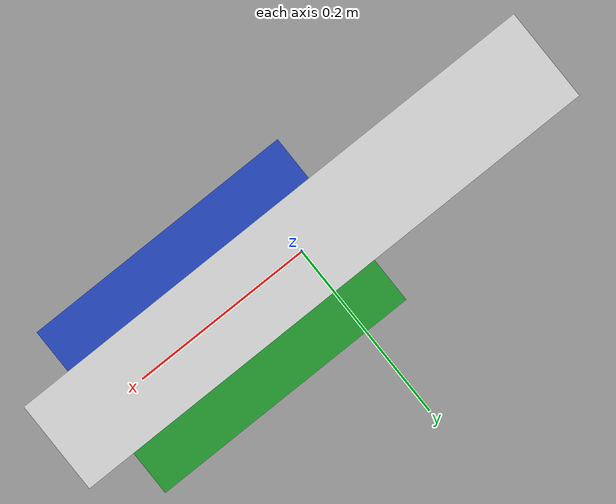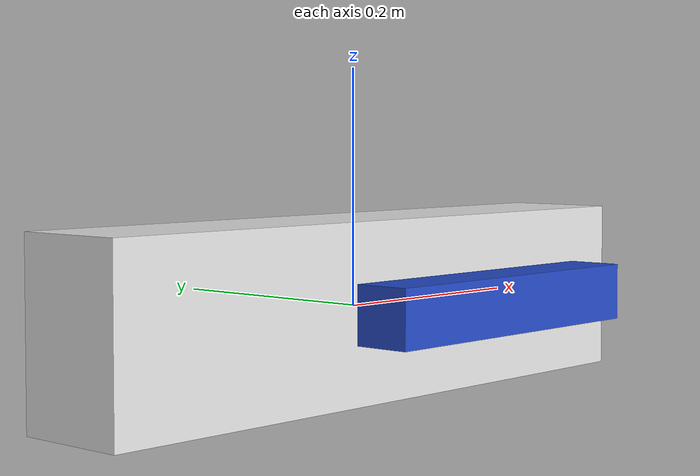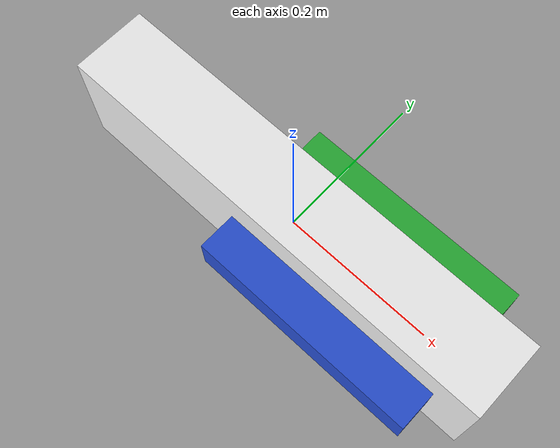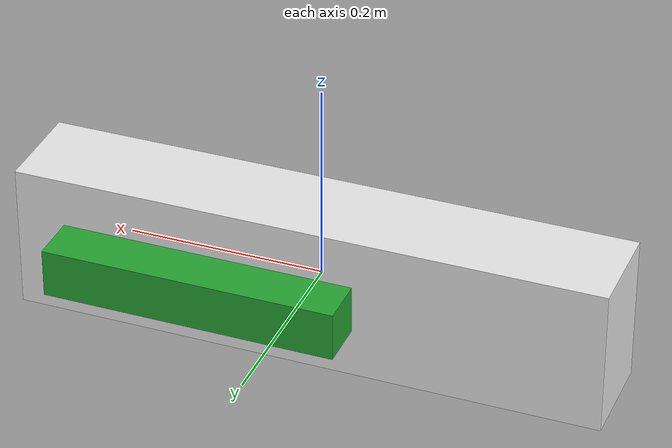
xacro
<?xml version="1.0"?>

<robot name="two_link" xmlns:xacro="http://ros.org/wiki/xacro">

  <!-- Property Definition: Referred to using ${property_name} -->
  <xacro:property name="box_name" value="robot" />
  <xacro:property name="mass" value="0.5" />

  <!-- Macro for the inertia of a box -->
  <xacro:macro name="box_inertia" params="x y z mass">
    <inertia ixx="${0.0833333 * mass * (y*y + z*z)}" ixy="0.0" ixz="0.0"
      iyy="${0.0833333 * mass * (x*x + z*z)}" iyz="0.0"
      izz="${0.0833333 * mass * (x*x + y*y)}" />
  </xacro:macro>

    <!-- Macro for the inertial properties of a box -->
  <xacro:macro name="box_inertial" params="x y z mass *origin">
    <inertial>
      <mass value="${mass}" />
      <xacro:insert_block name="origin" />
      <xacro:box_inertia x="${x}" y="${y}" z="${z}" mass="${mass}" />
    </inertial>
  </xacro:macro>

<!-- Link Definitions (Virtual Link) -->
<link name="${box_name}/base_link" />

<!-- Link Definitions (Actual Link) -->
<link name="${box_name}/box">
  <!-- Inertial block (uses box_inertial macro) -->
  <xacro:box_inertial x="0.6" y="0.1" z="0.15" mass="${mass}">
    <origin xyz="0 0 0" />
  </xacro:box_inertial>

  <!-- Visual block -->
  <visual>
    <origin xyz="0 0 0" rpy="0 0 0" />
    <geometry>
      <box size="0.6 0.1 0.15"/>
    </geometry>
  </visual>

  <!-- Collision block -->
  <collision>
    <origin xyz="0 0 0" rpy="0 0 0" />
    <geometry>
      <box size="0.6 0.1 0.15"/>
     </geometry>
  </collision>
</link>

  <!-- Gazebo specific properties for the box link -->
  <gazebo reference="${box_name}/box">
    <material>Gazebo/White</material>
      <mu1>5.01</mu1>
      <mu2>5.01</mu2>
  </gazebo>

  <!-- Joint between the virtual link and the actual link -->
  <joint name="${box_name}/base_joint" type="fixed">
    <origin xyz="0.0 0 0.0" rpy="0 0 0" />
    <parent link="${box_name}/base_link" />
    <child link="${box_name}/box" />
  </joint>

  <link name="${box_name}/arm1">
    <!-- Visual block -->
    <visual>
      <origin xyz="0.1 0 0" rpy="0 0 0" />
      <geometry>
        <box size="0.3 0.05 0.05"/>
      </geometry>
    </visual>
    <!-- Collision block -->
    <collision>
      <origin xyz="0.1 0 0" rpy="0 0 0" />
      <geometry>
        <box size="0.3 0.05 0.05"/>
      </geometry>
    </collision>
    <!-- Inertial block (uses box_inertial macro) -->
    <xacro:box_inertial x="0.3" y="0.05" z="0.05" mass="${mass}">
      <origin xyz="0.1 0 0" />
    </xacro:box_inertial>
  </link>
  <link name="${box_name}/arm2">
    <!-- Visual block -->
    <visual>
      <origin xyz="0.1 0 0" rpy="0 0 0" />
      <geometry>
        <box size="0.3 0.05 0.05"/>
      </geometry>
    </visual>
    <!-- Collision block -->
    <collision>
      <origin xyz="0.1 0 0" rpy="0 0 0" />
      <geometry>
        <box size="0.3 0.05 0.05"/>
      </geometry>
    </collision>
    <!-- Inertial block (uses box_inertial macro) -->
    <xacro:box_inertial x="0.3" y="0.05" z="0.05" mass="${mass}">
      <origin xyz="0.1 0 0" />
    </xacro:box_inertial>
  </link>
  <!-- Joint between the first link and the new link -->
  <joint name="${box_name}/link_joint1" type="revolute">
    <origin xyz="0.0 -0.075 -0.00" rpy="0 0 0" />
    <parent link="${box_name}/box" />
    <child link="${box_name}/arm1" />
    <axis xyz="0 1 0" />
    <limit lower="${-pi}" upper="${pi}" effort="50.01" velocity="1.01" />
    <dynamics damping="0.0" friction="0.1"/>
  </joint>
  <!-- Gazebo specific properties for the arm link -->
  <gazebo reference="${box_name}/arm1">
    <material>Gazebo/Blue</material>
  </gazebo>

    <!-- Joint between the first link and the new link -->
  <joint name="${box_name}/link_joint2" type="revolute">
    <origin xyz="0.0 0.075 -0.0" rpy="0 0 0" />
    <parent link="${box_name}/box" />
    <child link="${box_name}/arm2" />
    <axis xyz="0 1 0" />
    <limit lower="${-pi}" upper="${pi}" effort="50.01" velocity="1.01" />
    <dynamics damping="0.0" friction="0.1"/>
  </joint>
  <!-- Gazebo specific properties for the arm link -->
  <gazebo reference="${box_name}/arm2">
    <material>Gazebo/Green</material>
  </gazebo>

  <!-- Interface the plugin with the movable joints -->
  <ros2_control name="GazeboSystem" type="system">
    <hardware>
      <plugin>gazebo_ros2_control/GazeboSystem</plugin>
    </hardware>
    <joint name="${box_name}/link_joint1">
      <param name="pos_kp">4</param>
      <param name="pos_ki">1</param>
      <param name="pos_kd">1</param>
      <param name="pos_max_integral_error">1</param>
      <command_interface name="position_pid"/>
      <state_interface name="position"/>
      <state_interface name="velocity"/>
      <state_interface name="effort"/>
    </joint>
    <joint name="${box_name}/link_joint2">
      <param name="pos_kp">4</param>
      <param name="pos_ki">1</param>
      <param name="pos_kd">1</param>
      <param name="pos_max_integral_error">1</param>
      <command_interface name="position_pid"/>
      <state_interface name="position"/>
      <state_interface name="velocity"/>
      <state_interface name="effort"/>
    </joint>
  </ros2_control>
  <!-- Gazebo plugin to enable control of joints -->
  <gazebo>
    <plugin filename="libgazebo_ros2_control.so" name="gazebo_ros2_control">
      <parameters>$(find biorobotics_tutorial)/models/two_link_config_2.yaml</parameters>
    </plugin>
  </gazebo>
</robot>
